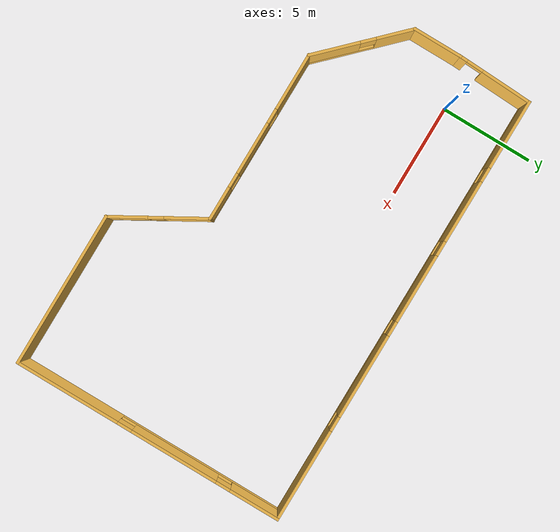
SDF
<?xml version='1.0'?>
<sdf version='1.6'>
  <model name='building'>
    <pose frame=''>9.80098 -4.17682 0 0 -0 0</pose>
    <link name='Wall_0'>
      <collision name='Wall_0_Collision'>
        <geometry>
          <box>
            <size>2.75 0.15 2.5</size>
          </box>
        </geometry>
        <pose frame=''>0 0 1.25 0 -0 0</pose>
      </collision>
      <visual name='Wall_0_Visual'>
        <pose frame=''>0 0 1.25 0 -0 0</pose>
        <geometry>
          <box>
            <size>2.75 0.15 2.5</size>
          </box>
        </geometry>
        <material>
          <script>
            <uri>file://media/materials/scripts/gazebo.material</uri>
            <name>Gazebo/Grey</name>
          </script>
          <ambient>1 0.764706 0.305882 1</ambient>
        </material>
        <meta>
          <layer>0</layer>
        </meta>
      </visual>
      <pose frame=''>-12.001 2.08682 0 0 0 -1.5708</pose>
    </link>
    <link name='Wall_1'>
      <pose frame=''>-10.1095 -1.10469 0 0 0 -0.785398</pose>
      <visual name='Wall_1_Visual_0'>
        <pose frame=''>-1.73777 0 1.25 0 -0 0</pose>
        <geometry>
          <box>
            <size>2.02446 0.15 2.5</size>
          </box>
        </geometry>
        <material>
          <script>
            <uri>file://media/materials/scripts/gazebo.material</uri>
            <name>Gazebo/Grey</name>
          </script>
          <ambient>1 0.764706 0.305882 1</ambient>
        </material>
        <meta>
          <layer>0</layer>
        </meta>
      </visual>
      <collision name='Wall_1_Collision_0'>
        <geometry>
          <box>
            <size>2.02446 0.15 2.5</size>
          </box>
        </geometry>
        <pose frame=''>-1.73777 0 1.25 0 -0 0</pose>
      </collision>
      <visual name='Wall_1_Visual_1'>
        <pose frame=''>1.01223 0 0.25 0 -0 0</pose>
        <geometry>
          <box>
            <size>3.47554 0.15 0.5</size>
          </box>
        </geometry>
        <material>
          <script>
            <uri>file://media/materials/scripts/gazebo.material</uri>
            <name>Gazebo/Grey</name>
          </script>
          <ambient>1 0.764706 0.305882 1</ambient>
        </material>
        <meta>
          <layer>0</layer>
        </meta>
      </visual>
      <collision name='Wall_1_Collision_1'>
        <geometry>
          <box>
            <size>3.47554 0.15 0.5</size>
          </box>
        </geometry>
        <pose frame=''>1.01223 0 0.25 0 -0 0</pose>
      </collision>
      <visual name='Wall_1_Visual_2'>
        <pose frame=''>1.41223 0 1.5 0 -0 0</pose>
        <geometry>
          <box>
            <size>2.67555 0.15 2</size>
          </box>
        </geometry>
        <material>
          <script>
            <uri>file://media/materials/scripts/gazebo.material</uri>
            <name>Gazebo/Grey</name>
          </script>
          <ambient>1 0.764706 0.305882 1</ambient>
        </material>
        <meta>
          <layer>0</layer>
        </meta>
      </visual>
      <collision name='Wall_1_Collision_2'>
        <geometry>
          <box>
            <size>2.67555 0.15 2</size>
          </box>
        </geometry>
        <pose frame=''>1.41223 0 1.5 0 -0 0</pose>
      </collision>
      <visual name='Wall_1_Visual_3'>
        <pose frame=''>-0.325545 0 1.9 0 -0 0</pose>
        <geometry>
          <box>
            <size>0.8 0.15 1.2</size>
          </box>
        </geometry>
        <material>
          <script>
            <uri>file://media/materials/scripts/gazebo.material</uri>
            <name>Gazebo/Grey</name>
          </script>
          <ambient>1 0.764706 0.305882 1</ambient>
        </material>
        <meta>
          <layer>0</layer>
        </meta>
      </visual>
      <collision name='Wall_1_Collision_3'>
        <geometry>
          <box>
            <size>0.8 0.15 1.2</size>
          </box>
        </geometry>
        <pose frame=''>-0.325545 0 1.9 0 -0 0</pose>
      </collision>
    </link>
    <link name='Wall_2'>
      <pose frame=''>-3.54296 -2.9962 0 0 -0 0</pose>
      <visual name='Wall_2_Visual_0'>
        <pose frame=''>-3.16919 0 1.25 0 -0 0</pose>
        <geometry>
          <box>
            <size>3.16162 0.15 2.5</size>
          </box>
        </geometry>
        <material>
          <script>
            <uri>file://media/materials/scripts/gazebo.material</uri>
            <name>Gazebo/Grey</name>
          </script>
          <ambient>1 0.764706 0.305882 1</ambient>
        </material>
        <meta>
          <layer>0</layer>
        </meta>
      </visual>
      <collision name='Wall_2_Collision_0'>
        <geometry>
          <box>
            <size>3.16162 0.15 2.5</size>
          </box>
        </geometry>
        <pose frame=''>-3.16919 0 1.25 0 -0 0</pose>
      </collision>
      <visual name='Wall_2_Visual_1'>
        <pose frame=''>1.58081 0 0.25 0 -0 0</pose>
        <geometry>
          <box>
            <size>6.33838 0.15 0.5</size>
          </box>
        </geometry>
        <material>
          <script>
            <uri>file://media/materials/scripts/gazebo.material</uri>
            <name>Gazebo/Grey</name>
          </script>
          <ambient>1 0.764706 0.305882 1</ambient>
        </material>
        <meta>
          <layer>0</layer>
        </meta>
      </visual>
      <collision name='Wall_2_Collision_1'>
        <geometry>
          <box>
            <size>6.33838 0.15 0.5</size>
          </box>
        </geometry>
        <pose frame=''>1.58081 0 0.25 0 -0 0</pose>
      </collision>
      <visual name='Wall_2_Visual_2'>
        <pose frame=''>0.647039 0 1.5 0 -0 0</pose>
        <geometry>
          <box>
            <size>2.87083 0.15 2</size>
          </box>
        </geometry>
        <material>
          <script>
            <uri>file://media/materials/scripts/gazebo.material</uri>
            <name>Gazebo/Grey</name>
          </script>
          <ambient>1 0.764706 0.305882 1</ambient>
        </material>
        <meta>
          <layer>0</layer>
        </meta>
      </visual>
      <collision name='Wall_2_Collision_2'>
        <geometry>
          <box>
            <size>2.87083 0.15 2</size>
          </box>
        </geometry>
        <pose frame=''>0.647039 0 1.5 0 -0 0</pose>
      </collision>
      <visual name='Wall_2_Visual_3'>
        <pose frame=''>3.81623 0 1.5 0 -0 0</pose>
        <geometry>
          <box>
            <size>1.86755 0.15 2</size>
          </box>
        </geometry>
        <material>
          <script>
            <uri>file://media/materials/scripts/gazebo.material</uri>
            <name>Gazebo/Grey</name>
          </script>
          <ambient>1 0.764706 0.305882 1</ambient>
        </material>
        <meta>
          <layer>0</layer>
        </meta>
      </visual>
      <collision name='Wall_2_Collision_3'>
        <geometry>
          <box>
            <size>1.86755 0.15 2</size>
          </box>
        </geometry>
        <pose frame=''>3.81623 0 1.5 0 -0 0</pose>
      </collision>
      <visual name='Wall_2_Visual_4'>
        <pose frame=''>-1.18837 0 1.9 0 -0 0</pose>
        <geometry>
          <box>
            <size>0.8 0.15 1.2</size>
          </box>
        </geometry>
        <material>
          <script>
            <uri>file://media/materials/scripts/gazebo.material</uri>
            <name>Gazebo/Grey</name>
          </script>
          <ambient>1 0.764706 0.305882 1</ambient>
        </material>
        <meta>
          <layer>0</layer>
        </meta>
      </visual>
      <collision name='Wall_2_Collision_4'>
        <geometry>
          <box>
            <size>0.8 0.15 1.2</size>
          </box>
        </geometry>
        <pose frame=''>-1.18837 0 1.9 0 -0 0</pose>
      </collision>
      <visual name='Wall_2_Visual_5'>
        <pose frame=''>2.48245 0 1.9 0 -0 0</pose>
        <geometry>
          <box>
            <size>0.8 0.15 1.2</size>
          </box>
        </geometry>
        <material>
          <script>
            <uri>file://media/materials/scripts/gazebo.material</uri>
            <name>Gazebo/Grey</name>
          </script>
          <ambient>1 0.764706 0.305882 1</ambient>
        </material>
        <meta>
          <layer>0</layer>
        </meta>
      </visual>
      <collision name='Wall_2_Collision_5'>
        <geometry>
          <box>
            <size>0.8 0.15 1.2</size>
          </box>
        </geometry>
        <pose frame=''>2.48245 0 1.9 0 -0 0</pose>
      </collision>
    </link>
    <link name='Wall_3'>
      <pose frame=''>2.40704 -5.20456 0 0 0 -1.0472</pose>
      <visual name='Wall_3_Visual_0'>
        <pose frame=''>-1.45515 0 1.25 0 -0 0</pose>
        <geometry>
          <box>
            <size>2.3397 0.15 2.5</size>
          </box>
        </geometry>
        <material>
          <script>
            <uri>file://media/materials/scripts/gazebo.material</uri>
            <name>Gazebo/Grey</name>
          </script>
          <ambient>1 0.764706 0.305882 1</ambient>
        </material>
        <meta>
          <layer>0</layer>
        </meta>
      </visual>
      <collision name='Wall_3_Collision_0'>
        <geometry>
          <box>
            <size>2.3397 0.15 2.5</size>
          </box>
        </geometry>
        <pose frame=''>-1.45515 0 1.25 0 -0 0</pose>
      </collision>
      <visual name='Wall_3_Visual_1'>
        <pose frame=''>1.16985 0 0.25 0 -0 0</pose>
        <geometry>
          <box>
            <size>2.9103 0.15 0.5</size>
          </box>
        </geometry>
        <material>
          <script>
            <uri>file://media/materials/scripts/gazebo.material</uri>
            <name>Gazebo/Grey</name>
          </script>
          <ambient>1 0.764706 0.305882 1</ambient>
        </material>
        <meta>
          <layer>0</layer>
        </meta>
      </visual>
      <collision name='Wall_3_Collision_1'>
        <geometry>
          <box>
            <size>2.9103 0.15 0.5</size>
          </box>
        </geometry>
        <pose frame=''>1.16985 0 0.25 0 -0 0</pose>
      </collision>
      <visual name='Wall_3_Visual_2'>
        <pose frame=''>1.56985 0 1.5 0 -0 0</pose>
        <geometry>
          <box>
            <size>2.1103 0.15 2</size>
          </box>
        </geometry>
        <material>
          <script>
            <uri>file://media/materials/scripts/gazebo.material</uri>
            <name>Gazebo/Grey</name>
          </script>
          <ambient>1 0.764706 0.305882 1</ambient>
        </material>
        <meta>
          <layer>0</layer>
        </meta>
      </visual>
      <collision name='Wall_3_Collision_2'>
        <geometry>
          <box>
            <size>2.1103 0.15 2</size>
          </box>
        </geometry>
        <pose frame=''>1.56985 0 1.5 0 -0 0</pose>
      </collision>
      <visual name='Wall_3_Visual_3'>
        <pose frame=''>0.114704 0 1.9 0 -0 0</pose>
        <geometry>
          <box>
            <size>0.8 0.15 1.2</size>
          </box>
        </geometry>
        <material>
          <script>
            <uri>file://media/materials/scripts/gazebo.material</uri>
            <name>Gazebo/Grey</name>
          </script>
          <ambient>1 0.764706 0.305882 1</ambient>
        </material>
        <meta>
          <layer>0</layer>
        </meta>
      </visual>
      <collision name='Wall_3_Collision_3'>
        <geometry>
          <box>
            <size>0.8 0.15 1.2</size>
          </box>
        </geometry>
        <pose frame=''>0.114704 0 1.9 0 -0 0</pose>
      </collision>
    </link>
    <link name='Wall_4'>
      <collision name='Wall_4_Collision'>
        <geometry>
          <box>
            <size>8.5 0.15 2.5</size>
          </box>
        </geometry>
        <pose frame=''>0 0 1.25 0 -0 0</pose>
      </collision>
      <visual name='Wall_4_Visual'>
        <pose frame=''>0 0 1.25 0 -0 0</pose>
        <geometry>
          <box>
            <size>8.5 0.15 2.5</size>
          </box>
        </geometry>
        <material>
          <script>
            <uri>file://media/materials/scripts/gazebo.material</uri>
            <name>Gazebo/Grey</name>
          </script>
          <ambient>1 0.764706 0.305882 1</ambient>
        </material>
        <meta>
          <layer>0</layer>
        </meta>
      </visual>
      <pose frame=''>7.85704 -7.41293 0 0 -0 0</pose>
    </link>
    <link name='Wall_5'>
      <pose frame=''>12.032 0.012071 0 0 -0 1.5708</pose>
      <visual name='Wall_5_Visual_0'>
        <pose frame=''>-4.61755 0 1.25 0 -0 0</pose>
        <geometry>
          <box>
            <size>5.7649 0.15 2.5</size>
          </box>
        </geometry>
        <material>
          <script>
            <uri>file://media/materials/scripts/gazebo.material</uri>
            <name>Gazebo/Grey</name>
          </script>
          <ambient>1 0.764706 0.305882 1</ambient>
        </material>
        <meta>
          <layer>0</layer>
        </meta>
      </visual>
      <collision name='Wall_5_Collision_0'>
        <geometry>
          <box>
            <size>5.7649 0.15 2.5</size>
          </box>
        </geometry>
        <pose frame=''>-4.61755 0 1.25 0 -0 0</pose>
      </collision>
      <visual name='Wall_5_Visual_1'>
        <pose frame=''>2.88245 0 0.25 0 -0 0</pose>
        <geometry>
          <box>
            <size>9.2351 0.15 0.5</size>
          </box>
        </geometry>
        <material>
          <script>
            <uri>file://media/materials/scripts/gazebo.material</uri>
            <name>Gazebo/Grey</name>
          </script>
          <ambient>1 0.764706 0.305882 1</ambient>
        </material>
        <meta>
          <layer>0</layer>
        </meta>
      </visual>
      <collision name='Wall_5_Collision_1'>
        <geometry>
          <box>
            <size>9.2351 0.15 0.5</size>
          </box>
        </geometry>
        <pose frame=''>2.88245 0 0.25 0 -0 0</pose>
      </collision>
      <visual name='Wall_5_Visual_2'>
        <pose frame=''>1.4792 0 1.5 0 -0 0</pose>
        <geometry>
          <box>
            <size>4.8286 0.15 2</size>
          </box>
        </geometry>
        <material>
          <script>
            <uri>file://media/materials/scripts/gazebo.material</uri>
            <name>Gazebo/Grey</name>
          </script>
          <ambient>1 0.764706 0.305882 1</ambient>
        </material>
        <meta>
          <layer>0</layer>
        </meta>
      </visual>
      <collision name='Wall_5_Collision_2'>
        <geometry>
          <box>
            <size>4.8286 0.15 2</size>
          </box>
        </geometry>
        <pose frame=''>1.4792 0 1.5 0 -0 0</pose>
      </collision>
      <visual name='Wall_5_Visual_3'>
        <pose frame=''>6.09675 0 1.5 0 -0 0</pose>
        <geometry>
          <box>
            <size>2.8065 0.15 2</size>
          </box>
        </geometry>
        <material>
          <script>
            <uri>file://media/materials/scripts/gazebo.material</uri>
            <name>Gazebo/Grey</name>
          </script>
          <ambient>1 0.764706 0.305882 1</ambient>
        </material>
        <meta>
          <layer>0</layer>
        </meta>
      </visual>
      <collision name='Wall_5_Collision_3'>
        <geometry>
          <box>
            <size>2.8065 0.15 2</size>
          </box>
        </geometry>
        <pose frame=''>6.09675 0 1.5 0 -0 0</pose>
      </collision>
      <visual name='Wall_5_Visual_4'>
        <pose frame=''>-1.3351 0 1.9 0 -0 0</pose>
        <geometry>
          <box>
            <size>0.8 0.15 1.2</size>
          </box>
        </geometry>
        <material>
          <script>
            <uri>file://media/materials/scripts/gazebo.material</uri>
            <name>Gazebo/Grey</name>
          </script>
          <ambient>1 0.764706 0.305882 1</ambient>
        </material>
        <meta>
          <layer>0</layer>
        </meta>
      </visual>
      <collision name='Wall_5_Collision_4'>
        <geometry>
          <box>
            <size>0.8 0.15 1.2</size>
          </box>
        </geometry>
        <pose frame=''>-1.3351 0 1.9 0 -0 0</pose>
      </collision>
      <visual name='Wall_5_Visual_5'>
        <pose frame=''>4.2935 0 1.9 0 -0 0</pose>
        <geometry>
          <box>
            <size>0.8 0.15 1.2</size>
          </box>
        </geometry>
        <material>
          <script>
            <uri>file://media/materials/scripts/gazebo.material</uri>
            <name>Gazebo/Grey</name>
          </script>
          <ambient>1 0.764706 0.305882 1</ambient>
        </material>
        <meta>
          <layer>0</layer>
        </meta>
      </visual>
      <collision name='Wall_5_Collision_5'>
        <geometry>
          <box>
            <size>0.8 0.15 1.2</size>
          </box>
        </geometry>
        <pose frame=''>4.2935 0 1.9 0 -0 0</pose>
      </collision>
    </link>
    <link name='Wall_6'>
      <pose frame=''>0.107043 7.43707 0 0 -0 3.14159</pose>
      <visual name='Wall_6_Visual_0'>
        <pose frame=''>-9.44 0 1.25 0 -0 0</pose>
        <geometry>
          <box>
            <size>5.11999 0.15 2.5</size>
          </box>
        </geometry>
        <material>
          <script>
            <uri>file://media/materials/scripts/gazebo.material</uri>
            <name>Gazebo/Grey</name>
          </script>
          <ambient>1 0.764706 0.305882 1</ambient>
        </material>
        <meta>
          <layer>0</layer>
        </meta>
      </visual>
      <collision name='Wall_6_Collision_0'>
        <geometry>
          <box>
            <size>5.11999 0.15 2.5</size>
          </box>
        </geometry>
        <pose frame=''>-9.44 0 1.25 0 -0 0</pose>
      </collision>
      <visual name='Wall_6_Visual_1'>
        <pose frame=''>2.55999 0 0.25 0 -0 0</pose>
        <geometry>
          <box>
            <size>18.88 0.15 0.5</size>
          </box>
        </geometry>
        <material>
          <script>
            <uri>file://media/materials/scripts/gazebo.material</uri>
            <name>Gazebo/Grey</name>
          </script>
          <ambient>1 0.764706 0.305882 1</ambient>
        </material>
        <meta>
          <layer>0</layer>
        </meta>
      </visual>
      <collision name='Wall_6_Collision_1'>
        <geometry>
          <box>
            <size>18.88 0.15 0.5</size>
          </box>
        </geometry>
        <pose frame=''>2.55999 0 0.25 0 -0 0</pose>
      </collision>
      <visual name='Wall_6_Visual_2'>
        <pose frame=''>-3.75748 0 1.5 0 -0 0</pose>
        <geometry>
          <box>
            <size>4.64506 0.15 2</size>
          </box>
        </geometry>
        <material>
          <script>
            <uri>file://media/materials/scripts/gazebo.material</uri>
            <name>Gazebo/Grey</name>
          </script>
          <ambient>1 0.764706 0.305882 1</ambient>
        </material>
        <meta>
          <layer>0</layer>
        </meta>
      </visual>
      <collision name='Wall_6_Collision_2'>
        <geometry>
          <box>
            <size>4.64506 0.15 2</size>
          </box>
        </geometry>
        <pose frame=''>-3.75748 0 1.5 0 -0 0</pose>
      </collision>
      <visual name='Wall_6_Visual_3'>
        <pose frame=''>1.25932 0 1.5 0 -0 0</pose>
        <geometry>
          <box>
            <size>3.78853 0.15 2</size>
          </box>
        </geometry>
        <material>
          <script>
            <uri>file://media/materials/scripts/gazebo.material</uri>
            <name>Gazebo/Grey</name>
          </script>
          <ambient>1 0.764706 0.305882 1</ambient>
        </material>
        <meta>
          <layer>0</layer>
        </meta>
      </visual>
      <collision name='Wall_6_Collision_3'>
        <geometry>
          <box>
            <size>3.78853 0.15 2</size>
          </box>
        </geometry>
        <pose frame=''>1.25932 0 1.5 0 -0 0</pose>
      </collision>
      <visual name='Wall_6_Visual_4'>
        <pose frame=''>5.66431 0 1.5 0 -0 0</pose>
        <geometry>
          <box>
            <size>3.42145 0.15 2</size>
          </box>
        </geometry>
        <material>
          <script>
            <uri>file://media/materials/scripts/gazebo.material</uri>
            <name>Gazebo/Grey</name>
          </script>
          <ambient>1 0.764706 0.305882 1</ambient>
        </material>
        <meta>
          <layer>0</layer>
        </meta>
      </visual>
      <collision name='Wall_6_Collision_4'>
        <geometry>
          <box>
            <size>3.42145 0.15 2</size>
          </box>
        </geometry>
        <pose frame=''>5.66431 0 1.5 0 -0 0</pose>
      </collision>
      <visual name='Wall_6_Visual_5'>
        <pose frame=''>10.0875 0 1.5 0 -0 0</pose>
        <geometry>
          <box>
            <size>3.82496 0.15 2</size>
          </box>
        </geometry>
        <material>
          <script>
            <uri>file://media/materials/scripts/gazebo.material</uri>
            <name>Gazebo/Grey</name>
          </script>
          <ambient>1 0.764706 0.305882 1</ambient>
        </material>
        <meta>
          <layer>0</layer>
        </meta>
      </visual>
      <collision name='Wall_6_Collision_5'>
        <geometry>
          <box>
            <size>3.82496 0.15 2</size>
          </box>
        </geometry>
        <pose frame=''>10.0875 0 1.5 0 -0 0</pose>
      </collision>
      <visual name='Wall_6_Visual_6'>
        <pose frame=''>-6.48001 0 1.9 0 -0 0</pose>
        <geometry>
          <box>
            <size>0.8 0.15 1.2</size>
          </box>
        </geometry>
        <material>
          <script>
            <uri>file://media/materials/scripts/gazebo.material</uri>
            <name>Gazebo/Grey</name>
          </script>
          <ambient>1 0.764706 0.305882 1</ambient>
        </material>
        <meta>
          <layer>0</layer>
        </meta>
      </visual>
      <collision name='Wall_6_Collision_6'>
        <geometry>
          <box>
            <size>0.8 0.15 1.2</size>
          </box>
        </geometry>
        <pose frame=''>-6.48001 0 1.9 0 -0 0</pose>
      </collision>
      <visual name='Wall_6_Visual_7'>
        <pose frame=''>-1.03495 0 1.9 0 -0 0</pose>
        <geometry>
          <box>
            <size>0.8 0.15 1.2</size>
          </box>
        </geometry>
        <material>
          <script>
            <uri>file://media/materials/scripts/gazebo.material</uri>
            <name>Gazebo/Grey</name>
          </script>
          <ambient>1 0.764706 0.305882 1</ambient>
        </material>
        <meta>
          <layer>0</layer>
        </meta>
      </visual>
      <collision name='Wall_6_Collision_7'>
        <geometry>
          <box>
            <size>0.8 0.15 1.2</size>
          </box>
        </geometry>
        <pose frame=''>-1.03495 0 1.9 0 -0 0</pose>
      </collision>
      <visual name='Wall_6_Visual_8'>
        <pose frame=''>3.55358 0 1.9 0 -0 0</pose>
        <geometry>
          <box>
            <size>0.8 0.15 1.2</size>
          </box>
        </geometry>
        <material>
          <script>
            <uri>file://media/materials/scripts/gazebo.material</uri>
            <name>Gazebo/Grey</name>
          </script>
          <ambient>1 0.764706 0.305882 1</ambient>
        </material>
        <meta>
          <layer>0</layer>
        </meta>
      </visual>
      <collision name='Wall_6_Collision_8'>
        <geometry>
          <box>
            <size>0.8 0.15 1.2</size>
          </box>
        </geometry>
        <pose frame=''>3.55358 0 1.9 0 -0 0</pose>
      </collision>
      <visual name='Wall_6_Visual_9'>
        <pose frame=''>7.77504 0 1.9 0 -0 0</pose>
        <geometry>
          <box>
            <size>0.8 0.15 1.2</size>
          </box>
        </geometry>
        <material>
          <script>
            <uri>file://media/materials/scripts/gazebo.material</uri>
            <name>Gazebo/Grey</name>
          </script>
          <ambient>1 0.764706 0.305882 1</ambient>
        </material>
        <meta>
          <layer>0</layer>
        </meta>
      </visual>
      <collision name='Wall_6_Collision_9'>
        <geometry>
          <box>
            <size>0.8 0.15 1.2</size>
          </box>
        </geometry>
        <pose frame=''>7.77504 0 1.9 0 -0 0</pose>
      </collision>
    </link>
    <link name='Wall_7'>
      <pose frame=''>-11.9095 5.41195 0 0 0 -1.61595</pose>
      <visual name='Wall_7_Visual_0'>
        <pose frame=''>-0.694747 0 1.25 0 -0 0</pose>
        <geometry>
          <box>
            <size>2.81489 0.15 2.5</size>
          </box>
        </geometry>
        <material>
          <script>
            <uri>file://media/materials/scripts/gazebo.material</uri>
            <name>Gazebo/Grey</name>
          </script>
          <ambient>1 0.764706 0.305882 1</ambient>
        </material>
        <meta>
          <layer>0</layer>
        </meta>
      </visual>
      <collision name='Wall_7_Collision_0'>
        <geometry>
          <box>
            <size>2.81489 0.15 2.5</size>
          </box>
        </geometry>
        <pose frame=''>-0.694747 0 1.25 0 -0 0</pose>
      </collision>
      <visual name='Wall_7_Visual_1'>
        <pose frame=''>1.85744 0 1.25 0 -0 0</pose>
        <geometry>
          <box>
            <size>0.489494 0.15 2.5</size>
          </box>
        </geometry>
        <material>
          <script>
            <uri>file://media/materials/scripts/gazebo.material</uri>
            <name>Gazebo/Grey</name>
          </script>
          <ambient>1 0.764706 0.305882 1</ambient>
        </material>
        <meta>
          <layer>0</layer>
        </meta>
      </visual>
      <collision name='Wall_7_Collision_1'>
        <geometry>
          <box>
            <size>0.489494 0.15 2.5</size>
          </box>
        </geometry>
        <pose frame=''>1.85744 0 1.25 0 -0 0</pose>
      </collision>
      <visual name='Wall_7_Visual_2'>
        <pose frame=''>1.1627 0 2.25 0 -0 0</pose>
        <geometry>
          <box>
            <size>0.9 0.15 0.5</size>
          </box>
        </geometry>
        <material>
          <script>
            <uri>file://media/materials/scripts/gazebo.material</uri>
            <name>Gazebo/Grey</name>
          </script>
          <ambient>1 0.764706 0.305882 1</ambient>
        </material>
        <meta>
          <layer>0</layer>
        </meta>
      </visual>
      <collision name='Wall_7_Collision_2'>
        <geometry>
          <box>
            <size>0.9 0.15 0.5</size>
          </box>
        </geometry>
        <pose frame=''>1.1627 0 2.25 0 -0 0</pose>
      </collision>
    </link>
    <static>1</static>
  </model>
</sdf>
